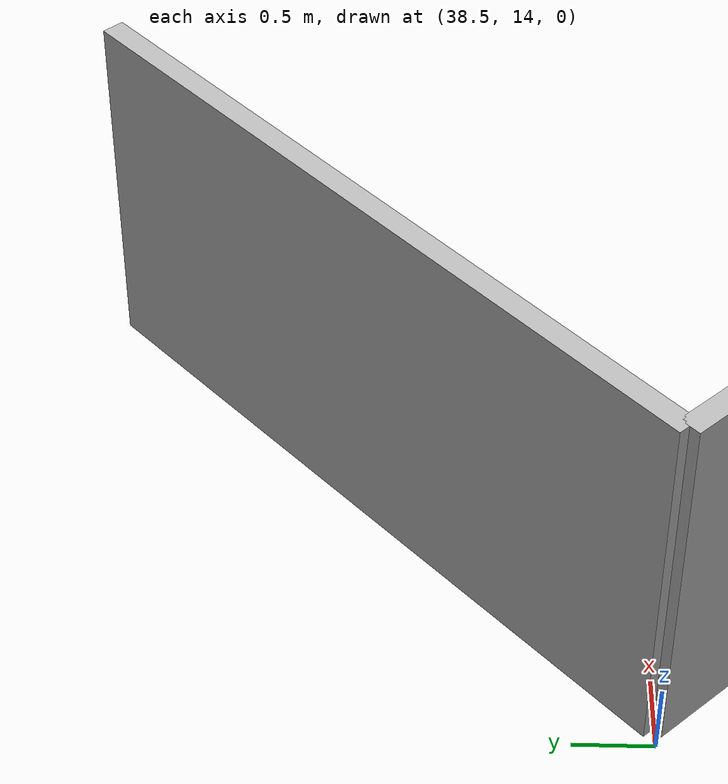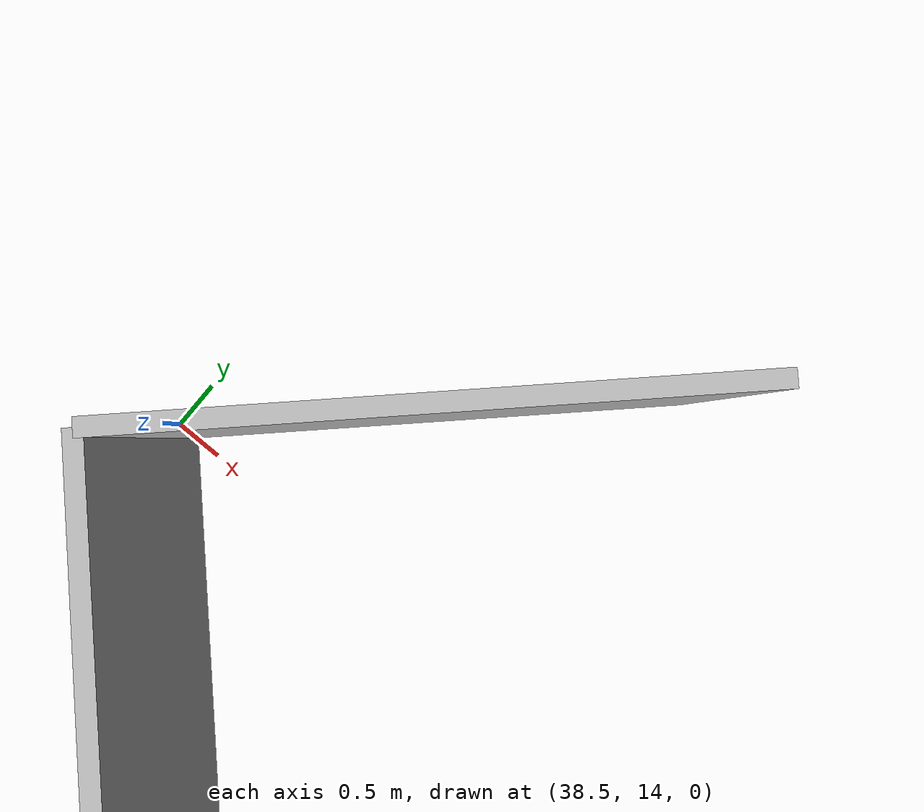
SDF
<?xml version="1.0" ?>
<sdf version="1.6">
  <model name="sps_4102">
    <pose frame="">0 0 0 0 -0 0</pose>
    <static>1</static>
    <self_collide>0</self_collide>
    <allow_auto_disable>0</allow_auto_disable>
    <link name="Wall2645">
      <kinematic>0</kinematic>
      <gravity>1</gravity>
      <self_collide>0</self_collide>
      <collision name="collision">
        <geometry>
          <box>
            <size>23.3425 0.15 2.5</size>
          </box>
        </geometry>
        <pose frame="">0 0 0 0 -0 0</pose>
      </collision>
      <visual name="visual">
        <geometry>
          <box>
            <size>23.3425 0.15 2.5</size>
          </box>
        </geometry>
        <pose frame="">0 0 0 0 -0 0</pose>
        <cast_shadows>1</cast_shadows>
        <transparency>0.0</transparency>
      </visual>
      <pose frame="">46.636 5.52809 1.25 0 -0 2.3275</pose>
    </link>
    <link name="Wall2646">
      <kinematic>0</kinematic>
      <gravity>1</gravity>
      <self_collide>0</self_collide>
      <collision name="collision">
        <geometry>
          <box>
            <size>5.00062 0.15 2.5</size>
          </box>
        </geometry>
        <pose frame="">0 0 0 0 -0 0</pose>
      </collision>
      <visual name="visual">
        <geometry>
          <box>
            <size>5.00062 0.15 2.5</size>
          </box>
        </geometry>
        <pose frame="">0 0 0 0 -0 0</pose>
        <cast_shadows>1</cast_shadows>
        <transparency>0.0</transparency>
      </visual>
      <pose frame="">40.4415 15.7308 1.25 0 -0 0.75668</pose>
    </link>
  </model>
</sdf>
